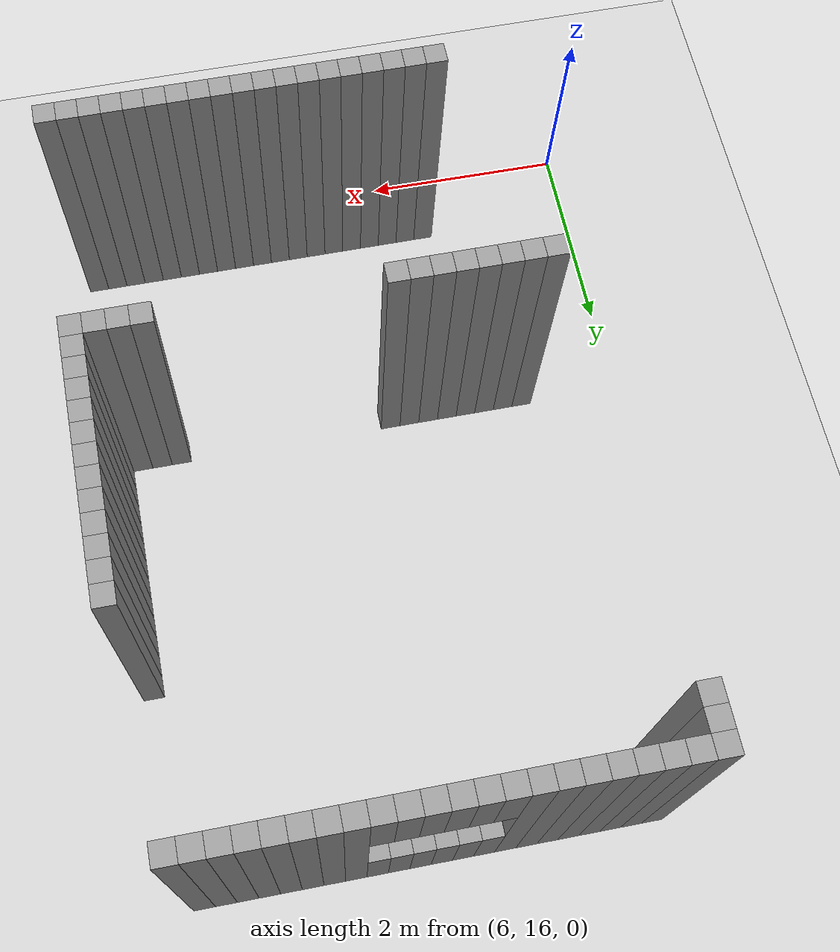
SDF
<sdf version="1.7">
 <world name="default">
  <model name="ground_plane">
   <static>1</static>
   <link name="link">
    <collision name="collision">
     <geometry><plane><normal>0 0 1</normal><size>100 100</size></plane></geometry>
     <surface>
      <contact><collide_bitmask>65535</collide_bitmask></contact>
      <friction><ode><mu>100</mu><mu2>50</mu2></ode></friction>
     </surface>
    </collision>
    <visual name="visual">
     <cast_shadows>0</cast_shadows>
     <geometry><plane><normal>0 0 1</normal><size>100 100</size></plane></geometry>
     <material>
      <script><uri>file://media/materials/scripts/gazebo.material</uri><name>Gazebo/Grey</name></script>
     </material>
    </visual>
   </link>
  </model>
  <model name="05222">
   <pose>-1 -1 0 0 -0 0</pose>
   <link name="Wall_824">
    <collision name="Wall_824_Collision">
     <geometry><box><size>0.2 0.2 3</size></box></geometry>
     <pose>0 0 1.5 0 -0 0</pose>
    </collision>
    <visual name="Wall_824_Visual">
     <pose>0 0 1.5 0 -0 0</pose>
     <geometry><box><size>0.2 0.2 3</size></box></geometry>
     <material>
      <script><uri>file://media/materials/scripts/gazebo.material</uri><name>Gazebo/Grey</name></script>
      <ambient>1 1 1 1</ambient>
     </material>
     <meta><layer>0</layer></meta>
    </visual>
    <pose>8.6 17.6 0 0 -0 0</pose>
   </link>
   <link name="Wall_825">
    <collision name="Wall_825_Collision">
     <geometry><box><size>0.2 0.2 3</size></box></geometry>
     <pose>0 0 1.5 0 -0 0</pose>
    </collision>
    <visual name="Wall_825_Visual">
     <pose>0 0 1.5 0 -0 0</pose>
     <geometry><box><size>0.2 0.2 3</size></box></geometry>
     <material>
      <script><uri>file://media/materials/scripts/gazebo.material</uri><name>Gazebo/Grey</name></script>
      <ambient>1 1 1 1</ambient>
     </material>
     <meta><layer>0</layer></meta>
    </visual>
    <pose>8.8 17.6 0 0 -0 0</pose>
   </link>
   <link name="Wall_826">
    <collision name="Wall_826_Collision">
     <geometry><box><size>0.2 0.2 3</size></box></geometry>
     <pose>0 0 1.5 0 -0 0</pose>
    </collision>
    <visual name="Wall_826_Visual">
     <pose>0 0 1.5 0 -0 0</pose>
     <geometry><box><size>0.2 0.2 3</size></box></geometry>
     <material>
      <script><uri>file://media/materials/scripts/gazebo.material</uri><name>Gazebo/Grey</name></script>
      <ambient>1 1 1 1</ambient>
     </material>
     <meta><layer>0</layer></meta>
    </visual>
    <pose>9.0 17.6 0 0 -0 0</pose>
   </link>
   <link name="Wall_827">
    <collision name="Wall_827_Collision">
     <geometry><box><size>0.2 0.2 3</size></box></geometry>
     <pose>0 0 1.5 0 -0 0</pose>
    </collision>
    <visual name="Wall_827_Visual">
     <pose>0 0 1.5 0 -0 0</pose>
     <geometry><box><size>0.2 0.2 3</size></box></geometry>
     <material>
      <script><uri>file://media/materials/scripts/gazebo.material</uri><name>Gazebo/Grey</name></script>
      <ambient>1 1 1 1</ambient>
     </material>
     <meta><layer>0</layer></meta>
    </visual>
    <pose>9.200000000000001 17.6 0 0 -0 0</pose>
   </link>
   <link name="Wall_828">
    <collision name="Wall_828_Collision">
     <geometry><box><size>0.2 0.2 3</size></box></geometry>
     <pose>0 0 1.5 0 -0 0</pose>
    </collision>
    <visual name="Wall_828_Visual">
     <pose>0 0 1.5 0 -0 0</pose>
     <geometry><box><size>0.2 0.2 3</size></box></geometry>
     <material>
      <script><uri>file://media/materials/scripts/gazebo.material</uri><name>Gazebo/Grey</name></script>
      <ambient>1 1 1 1</ambient>
     </material>
     <meta><layer>0</layer></meta>
    </visual>
    <pose>9.4 17.6 0 0 -0 0</pose>
   </link>
   <link name="Wall_829">
    <collision name="Wall_829_Collision">
     <geometry><box><size>0.2 0.2 3</size></box></geometry>
     <pose>0 0 1.5 0 -0 0</pose>
    </collision>
    <visual name="Wall_829_Visual">
     <pose>0 0 1.5 0 -0 0</pose>
     <geometry><box><size>0.2 0.2 3</size></box></geometry>
     <material>
      <script><uri>file://media/materials/scripts/gazebo.material</uri><name>Gazebo/Grey</name></script>
      <ambient>1 1 1 1</ambient>
     </material>
     <meta><layer>0</layer></meta>
    </visual>
    <pose>9.600000000000001 17.6 0 0 -0 0</pose>
   </link>
   <link name="Wall_830">
    <collision name="Wall_830_Collision">
     <geometry><box><size>0.2 0.2 3</size></box></geometry>
     <pose>0 0 1.5 0 -0 0</pose>
    </collision>
    <visual name="Wall_830_Visual">
     <pose>0 0 1.5 0 -0 0</pose>
     <geometry><box><size>0.2 0.2 3</size></box></geometry>
     <material>
      <script><uri>file://media/materials/scripts/gazebo.material</uri><name>Gazebo/Grey</name></script>
      <ambient>1 1 1 1</ambient>
     </material>
     <meta><layer>0</layer></meta>
    </visual>
    <pose>9.8 17.6 0 0 -0 0</pose>
   </link>
   <link name="Wall_831">
    <collision name="Wall_831_Collision">
     <geometry><box><size>0.2 0.2 3</size></box></geometry>
     <pose>0 0 1.5 0 -0 0</pose>
    </collision>
    <visual name="Wall_831_Visual">
     <pose>0 0 1.5 0 -0 0</pose>
     <geometry><box><size>0.2 0.2 3</size></box></geometry>
     <material>
      <script><uri>file://media/materials/scripts/gazebo.material</uri><name>Gazebo/Grey</name></script>
      <ambient>1 1 1 1</ambient>
     </material>
     <meta><layer>0</layer></meta>
    </visual>
    <pose>10.0 17.6 0 0 -0 0</pose>
   </link>
   <link name="Wall_832">
    <collision name="Wall_832_Collision">
     <geometry><box><size>0.2 0.2 3</size></box></geometry>
     <pose>0 0 1.5 0 -0 0</pose>
    </collision>
    <visual name="Wall_832_Visual">
     <pose>0 0 1.5 0 -0 0</pose>
     <geometry><box><size>0.2 0.2 3</size></box></geometry>
     <material>
      <script><uri>file://media/materials/scripts/gazebo.material</uri><name>Gazebo/Grey</name></script>
      <ambient>1 1 1 1</ambient>
     </material>
     <meta><layer>0</layer></meta>
    </visual>
    <pose>10.200000000000001 17.6 0 0 -0 0</pose>
   </link>
   <link name="Wall_833">
    <collision name="Wall_833_Collision">
     <geometry><box><size>0.2 0.2 3</size></box></geometry>
     <pose>0 0 1.5 0 -0 0</pose>
    </collision>
    <visual name="Wall_833_Visual">
     <pose>0 0 1.5 0 -0 0</pose>
     <geometry><box><size>0.2 0.2 3</size></box></geometry>
     <material>
      <script><uri>file://media/materials/scripts/gazebo.material</uri><name>Gazebo/Grey</name></script>
      <ambient>1 1 1 1</ambient>
     </material>
     <meta><layer>0</layer></meta>
    </visual>
    <pose>10.4 17.6 0 0 -0 0</pose>
   </link>
   <link name="Wall_834">
    <collision name="Wall_834_Collision">
     <geometry><box><size>0.2 0.2 3</size></box></geometry>
     <pose>0 0 1.5 0 -0 0</pose>
    </collision>
    <visual name="Wall_834_Visual">
     <pose>0 0 1.5 0 -0 0</pose>
     <geometry><box><size>0.2 0.2 3</size></box></geometry>
     <material>
      <script><uri>file://media/materials/scripts/gazebo.material</uri><name>Gazebo/Grey</name></script>
      <ambient>1 1 1 1</ambient>
     </material>
     <meta><layer>0</layer></meta>
    </visual>
    <pose>10.600000000000001 17.6 0 0 -0 0</pose>
   </link>
   <link name="Wall_835">
    <collision name="Wall_835_Collision">
     <geometry><box><size>0.2 0.2 3</size></box></geometry>
     <pose>0 0 1.5 0 -0 0</pose>
    </collision>
    <visual name="Wall_835_Visual">
     <pose>0 0 1.5 0 -0 0</pose>
     <geometry><box><size>0.2 0.2 3</size></box></geometry>
     <material>
      <script><uri>file://media/materials/scripts/gazebo.material</uri><name>Gazebo/Grey</name></script>
      <ambient>1 1 1 1</ambient>
     </material>
     <meta><layer>0</layer></meta>
    </visual>
    <pose>10.8 17.6 0 0 -0 0</pose>
   </link>
   <link name="Wall_836">
    <collision name="Wall_836_Collision">
     <geometry><box><size>0.2 0.2 3</size></box></geometry>
     <pose>0 0 1.5 0 -0 0</pose>
    </collision>
    <visual name="Wall_836_Visual">
     <pose>0 0 1.5 0 -0 0</pose>
     <geometry><box><size>0.2 0.2 3</size></box></geometry>
     <material>
      <script><uri>file://media/materials/scripts/gazebo.material</uri><name>Gazebo/Grey</name></script>
      <ambient>1 1 1 1</ambient>
     </material>
     <meta><layer>0</layer></meta>
    </visual>
    <pose>11.0 17.6 0 0 -0 0</pose>
   </link>
   <link name="Wall_837">
    <collision name="Wall_837_Collision">
     <geometry><box><size>0.2 0.2 3</size></box></geometry>
     <pose>0 0 1.5 0 -0 0</pose>
    </collision>
    <visual name="Wall_837_Visual">
     <pose>0 0 1.5 0 -0 0</pose>
     <geometry><box><size>0.2 0.2 3</size></box></geometry>
     <material>
      <script><uri>file://media/materials/scripts/gazebo.material</uri><name>Gazebo/Grey</name></script>
      <ambient>1 1 1 1</ambient>
     </material>
     <meta><layer>0</layer></meta>
    </visual>
    <pose>11.200000000000001 17.6 0 0 -0 0</pose>
   </link>
   <link name="Wall_838">
    <collision name="Wall_838_Collision">
     <geometry><box><size>0.2 0.2 3</size></box></geometry>
     <pose>0 0 1.5 0 -0 0</pose>
    </collision>
    <visual name="Wall_838_Visual">
     <pose>0 0 1.5 0 -0 0</pose>
     <geometry><box><size>0.2 0.2 3</size></box></geometry>
     <material>
      <script><uri>file://media/materials/scripts/gazebo.material</uri><name>Gazebo/Grey</name></script>
      <ambient>1 1 1 1</ambient>
     </material>
     <meta><layer>0</layer></meta>
    </visual>
    <pose>11.4 17.6 0 0 -0 0</pose>
   </link>
   <link name="Wall_839">
    <collision name="Wall_839_Collision">
     <geometry><box><size>0.2 0.2 3</size></box></geometry>
     <pose>0 0 1.5 0 -0 0</pose>
    </collision>
    <visual name="Wall_839_Visual">
     <pose>0 0 1.5 0 -0 0</pose>
     <geometry><box><size>0.2 0.2 3</size></box></geometry>
     <material>
      <script><uri>file://media/materials/scripts/gazebo.material</uri><name>Gazebo/Grey</name></script>
      <ambient>1 1 1 1</ambient>
     </material>
     <meta><layer>0</layer></meta>
    </visual>
    <pose>11.600000000000001 17.6 0 0 -0 0</pose>
   </link>
   <link name="Wall_840">
    <collision name="Wall_840_Collision">
     <geometry><box><size>0.2 0.2 3</size></box></geometry>
     <pose>0 0 1.5 0 -0 0</pose>
    </collision>
    <visual name="Wall_840_Visual">
     <pose>0 0 1.5 0 -0 0</pose>
     <geometry><box><size>0.2 0.2 3</size></box></geometry>
     <material>
      <script><uri>file://media/materials/scripts/gazebo.material</uri><name>Gazebo/Grey</name></script>
      <ambient>1 1 1 1</ambient>
     </material>
     <meta><layer>0</layer></meta>
    </visual>
    <pose>11.8 17.6 0 0 -0 0</pose>
   </link>
   <link name="Wall_841">
    <collision name="Wall_841_Collision">
     <geometry><box><size>0.2 0.2 3</size></box></geometry>
     <pose>0 0 1.5 0 -0 0</pose>
    </collision>
    <visual name="Wall_841_Visual">
     <pose>0 0 1.5 0 -0 0</pose>
     <geometry><box><size>0.2 0.2 3</size></box></geometry>
     <material>
      <script><uri>file://media/materials/scripts/gazebo.material</uri><name>Gazebo/Grey</name></script>
      <ambient>1 1 1 1</ambient>
     </material>
     <meta><layer>0</layer></meta>
    </visual>
    <pose>12.0 17.6 0 0 -0 0</pose>
   </link>
   <link name="Wall_842">
    <collision name="Wall_842_Collision">
     <geometry><box><size>0.2 0.2 3</size></box></geometry>
     <pose>0 0 1.5 0 -0 0</pose>
    </collision>
    <visual name="Wall_842_Visual">
     <pose>0 0 1.5 0 -0 0</pose>
     <geometry><box><size>0.2 0.2 3</size></box></geometry>
     <material>
      <script><uri>file://media/materials/scripts/gazebo.material</uri><name>Gazebo/Grey</name></script>
      <ambient>1 1 1 1</ambient>
     </material>
     <meta><layer>0</layer></meta>
    </visual>
    <pose>12.200000000000001 17.6 0 0 -0 0</pose>
   </link>
   <link name="Wall_912">
    <collision name="Wall_912_Collision">
     <geometry><box><size>0.2 0.2 3</size></box></geometry>
     <pose>0 0 1.5 0 -0 0</pose>
    </collision>
    <visual name="Wall_912_Visual">
     <pose>0 0 1.5 0 -0 0</pose>
     <geometry><box><size>0.2 0.2 3</size></box></geometry>
     <material>
      <script><uri>file://media/materials/scripts/gazebo.material</uri><name>Gazebo/Grey</name></script>
      <ambient>1 1 1 1</ambient>
     </material>
     <meta><layer>0</layer></meta>
    </visual>
    <pose>8.0 19.8 0 0 -0 0</pose>
   </link>
   <link name="Wall_913">
    <collision name="Wall_913_Collision">
     <geometry><box><size>0.2 0.2 3</size></box></geometry>
     <pose>0 0 1.5 0 -0 0</pose>
    </collision>
    <visual name="Wall_913_Visual">
     <pose>0 0 1.5 0 -0 0</pose>
     <geometry><box><size>0.2 0.2 3</size></box></geometry>
     <material>
      <script><uri>file://media/materials/scripts/gazebo.material</uri><name>Gazebo/Grey</name></script>
      <ambient>1 1 1 1</ambient>
     </material>
     <meta><layer>0</layer></meta>
    </visual>
    <pose>8.200000000000001 19.8 0 0 -0 0</pose>
   </link>
   <link name="Wall_914">
    <collision name="Wall_914_Collision">
     <geometry><box><size>0.2 0.2 3</size></box></geometry>
     <pose>0 0 1.5 0 -0 0</pose>
    </collision>
    <visual name="Wall_914_Visual">
     <pose>0 0 1.5 0 -0 0</pose>
     <geometry><box><size>0.2 0.2 3</size></box></geometry>
     <material>
      <script><uri>file://media/materials/scripts/gazebo.material</uri><name>Gazebo/Grey</name></script>
      <ambient>1 1 1 1</ambient>
     </material>
     <meta><layer>0</layer></meta>
    </visual>
    <pose>8.4 19.8 0 0 -0 0</pose>
   </link>
   <link name="Wall_915">
    <collision name="Wall_915_Collision">
     <geometry><box><size>0.2 0.2 3</size></box></geometry>
     <pose>0 0 1.5 0 -0 0</pose>
    </collision>
    <visual name="Wall_915_Visual">
     <pose>0 0 1.5 0 -0 0</pose>
     <geometry><box><size>0.2 0.2 3</size></box></geometry>
     <material>
      <script><uri>file://media/materials/scripts/gazebo.material</uri><name>Gazebo/Grey</name></script>
      <ambient>1 1 1 1</ambient>
     </material>
     <meta><layer>0</layer></meta>
    </visual>
    <pose>8.6 19.8 0 0 -0 0</pose>
   </link>
   <link name="Wall_916">
    <collision name="Wall_916_Collision">
     <geometry><box><size>0.2 0.2 3</size></box></geometry>
     <pose>0 0 1.5 0 -0 0</pose>
    </collision>
    <visual name="Wall_916_Visual">
     <pose>0 0 1.5 0 -0 0</pose>
     <geometry><box><size>0.2 0.2 3</size></box></geometry>
     <material>
      <script><uri>file://media/materials/scripts/gazebo.material</uri><name>Gazebo/Grey</name></script>
      <ambient>1 1 1 1</ambient>
     </material>
     <meta><layer>0</layer></meta>
    </visual>
    <pose>8.8 19.8 0 0 -0 0</pose>
   </link>
   <link name="Wall_917">
    <collision name="Wall_917_Collision">
     <geometry><box><size>0.2 0.2 3</size></box></geometry>
     <pose>0 0 1.5 0 -0 0</pose>
    </collision>
    <visual name="Wall_917_Visual">
     <pose>0 0 1.5 0 -0 0</pose>
     <geometry><box><size>0.2 0.2 3</size></box></geometry>
     <material>
      <script><uri>file://media/materials/scripts/gazebo.material</uri><name>Gazebo/Grey</name></script>
      <ambient>1 1 1 1</ambient>
     </material>
     <meta><layer>0</layer></meta>
    </visual>
    <pose>9.0 19.8 0 0 -0 0</pose>
   </link>
   <link name="Wall_918">
    <collision name="Wall_918_Collision">
     <geometry><box><size>0.2 0.2 3</size></box></geometry>
     <pose>0 0 1.5 0 -0 0</pose>
    </collision>
    <visual name="Wall_918_Visual">
     <pose>0 0 1.5 0 -0 0</pose>
     <geometry><box><size>0.2 0.2 3</size></box></geometry>
     <material>
      <script><uri>file://media/materials/scripts/gazebo.material</uri><name>Gazebo/Grey</name></script>
      <ambient>1 1 1 1</ambient>
     </material>
     <meta><layer>0</layer></meta>
    </visual>
    <pose>9.200000000000001 19.8 0 0 -0 0</pose>
   </link>
   <link name="Wall_919">
    <collision name="Wall_919_Collision">
     <geometry><box><size>0.2 0.2 3</size></box></geometry>
     <pose>0 0 1.5 0 -0 0</pose>
    </collision>
    <visual name="Wall_919_Visual">
     <pose>0 0 1.5 0 -0 0</pose>
     <geometry><box><size>0.2 0.2 3</size></box></geometry>
     <material>
      <script><uri>file://media/materials/scripts/gazebo.material</uri><name>Gazebo/Grey</name></script>
      <ambient>1 1 1 1</ambient>
     </material>
     <meta><layer>0</layer></meta>
    </visual>
    <pose>9.4 19.8 0 0 -0 0</pose>
   </link>
   <link name="Wall_920">
    <collision name="Wall_920_Collision">
     <geometry><box><size>0.2 0.2 3</size></box></geometry>
     <pose>0 0 1.5 0 -0 0</pose>
    </collision>
    <visual name="Wall_920_Visual">
     <pose>0 0 1.5 0 -0 0</pose>
     <geometry><box><size>0.2 0.2 3</size></box></geometry>
     <material>
      <script><uri>file://media/materials/scripts/gazebo.material</uri><name>Gazebo/Grey</name></script>
      <ambient>1 1 1 1</ambient>
     </material>
     <meta><layer>0</layer></meta>
    </visual>
    <pose>11.600000000000001 19.8 0 0 -0 0</pose>
   </link>
   <link name="Wall_921">
    <collision name="Wall_921_Collision">
     <geometry><box><size>0.2 0.2 3</size></box></geometry>
     <pose>0 0 1.5 0 -0 0</pose>
    </collision>
    <visual name="Wall_921_Visual">
     <pose>0 0 1.5 0 -0 0</pose>
     <geometry><box><size>0.2 0.2 3</size></box></geometry>
     <material>
      <script><uri>file://media/materials/scripts/gazebo.material</uri><name>Gazebo/Grey</name></script>
      <ambient>1 1 1 1</ambient>
     </material>
     <meta><layer>0</layer></meta>
    </visual>
    <pose>11.8 19.8 0 0 -0 0</pose>
   </link>
   <link name="Wall_922">
    <collision name="Wall_922_Collision">
     <geometry><box><size>0.2 0.2 3</size></box></geometry>
     <pose>0 0 1.5 0 -0 0</pose>
    </collision>
    <visual name="Wall_922_Visual">
     <pose>0 0 1.5 0 -0 0</pose>
     <geometry><box><size>0.2 0.2 3</size></box></geometry>
     <material>
      <script><uri>file://media/materials/scripts/gazebo.material</uri><name>Gazebo/Grey</name></script>
      <ambient>1 1 1 1</ambient>
     </material>
     <meta><layer>0</layer></meta>
    </visual>
    <pose>12.0 19.8 0 0 -0 0</pose>
   </link>
   <link name="Wall_923">
    <collision name="Wall_923_Collision">
     <geometry><box><size>0.2 0.2 3</size></box></geometry>
     <pose>0 0 1.5 0 -0 0</pose>
    </collision>
    <visual name="Wall_923_Visual">
     <pose>0 0 1.5 0 -0 0</pose>
     <geometry><box><size>0.2 0.2 3</size></box></geometry>
     <material>
      <script><uri>file://media/materials/scripts/gazebo.material</uri><name>Gazebo/Grey</name></script>
      <ambient>1 1 1 1</ambient>
     </material>
     <meta><layer>0</layer></meta>
    </visual>
    <pose>12.200000000000001 19.8 0 0 -0 0</pose>
   </link>
   <link name="Wall_948">
    <collision name="Wall_948_Collision">
     <geometry><box><size>0.2 0.2 3</size></box></geometry>
     <pose>0 0 1.5 0 -0 0</pose>
    </collision>
    <visual name="Wall_948_Visual">
     <pose>0 0 1.5 0 -0 0</pose>
     <geometry><box><size>0.2 0.2 3</size></box></geometry>
     <material>
      <script><uri>file://media/materials/scripts/gazebo.material</uri><name>Gazebo/Grey</name></script>
      <ambient>1 1 1 1</ambient>
     </material>
     <meta><layer>0</layer></meta>
    </visual>
    <pose>12.200000000000001 20.0 0 0 -0 0</pose>
   </link>
   <link name="Wall_953">
    <collision name="Wall_953_Collision">
     <geometry><box><size>0.2 0.2 3</size></box></geometry>
     <pose>0 0 1.5 0 -0 0</pose>
    </collision>
    <visual name="Wall_953_Visual">
     <pose>0 0 1.5 0 -0 0</pose>
     <geometry><box><size>0.2 0.2 3</size></box></geometry>
     <material>
      <script><uri>file://media/materials/scripts/gazebo.material</uri><name>Gazebo/Grey</name></script>
      <ambient>1 1 1 1</ambient>
     </material>
     <meta><layer>0</layer></meta>
    </visual>
    <pose>12.200000000000001 20.200000000000003 0 0 -0 0</pose>
   </link>
   <link name="Wall_959">
    <collision name="Wall_959_Collision">
     <geometry><box><size>0.2 0.2 3</size></box></geometry>
     <pose>0 0 1.5 0 -0 0</pose>
    </collision>
    <visual name="Wall_959_Visual">
     <pose>0 0 1.5 0 -0 0</pose>
     <geometry><box><size>0.2 0.2 3</size></box></geometry>
     <material>
      <script><uri>file://media/materials/scripts/gazebo.material</uri><name>Gazebo/Grey</name></script>
      <ambient>1 1 1 1</ambient>
     </material>
     <meta><layer>0</layer></meta>
    </visual>
    <pose>12.200000000000001 20.400000000000002 0 0 -0 0</pose>
   </link>
   <link name="Wall_965">
    <collision name="Wall_965_Collision">
     <geometry><box><size>0.2 0.2 3</size></box></geometry>
     <pose>0 0 1.5 0 -0 0</pose>
    </collision>
    <visual name="Wall_965_Visual">
     <pose>0 0 1.5 0 -0 0</pose>
     <geometry><box><size>0.2 0.2 3</size></box></geometry>
     <material>
      <script><uri>file://media/materials/scripts/gazebo.material</uri><name>Gazebo/Grey</name></script>
      <ambient>1 1 1 1</ambient>
     </material>
     <meta><layer>0</layer></meta>
    </visual>
    <pose>12.200000000000001 20.6 0 0 -0 0</pose>
   </link>
   <link name="Wall_971">
    <collision name="Wall_971_Collision">
     <geometry><box><size>0.2 0.2 3</size></box></geometry>
     <pose>0 0 1.5 0 -0 0</pose>
    </collision>
    <visual name="Wall_971_Visual">
     <pose>0 0 1.5 0 -0 0</pose>
     <geometry><box><size>0.2 0.2 3</size></box></geometry>
     <material>
      <script><uri>file://media/materials/scripts/gazebo.material</uri><name>Gazebo/Grey</name></script>
      <ambient>1 1 1 1</ambient>
     </material>
     <meta><layer>0</layer></meta>
    </visual>
    <pose>12.200000000000001 20.8 0 0 -0 0</pose>
   </link>
   <link name="Wall_977">
    <collision name="Wall_977_Collision">
     <geometry><box><size>0.2 0.2 3</size></box></geometry>
     <pose>0 0 1.5 0 -0 0</pose>
    </collision>
    <visual name="Wall_977_Visual">
     <pose>0 0 1.5 0 -0 0</pose>
     <geometry><box><size>0.2 0.2 3</size></box></geometry>
     <material>
      <script><uri>file://media/materials/scripts/gazebo.material</uri><name>Gazebo/Grey</name></script>
      <ambient>1 1 1 1</ambient>
     </material>
     <meta><layer>0</layer></meta>
    </visual>
    <pose>12.200000000000001 21.0 0 0 -0 0</pose>
   </link>
   <link name="Wall_983">
    <collision name="Wall_983_Collision">
     <geometry><box><size>0.2 0.2 3</size></box></geometry>
     <pose>0 0 1.5 0 -0 0</pose>
    </collision>
    <visual name="Wall_983_Visual">
     <pose>0 0 1.5 0 -0 0</pose>
     <geometry><box><size>0.2 0.2 3</size></box></geometry>
     <material>
      <script><uri>file://media/materials/scripts/gazebo.material</uri><name>Gazebo/Grey</name></script>
      <ambient>1 1 1 1</ambient>
     </material>
     <meta><layer>0</layer></meta>
    </visual>
    <pose>12.200000000000001 21.200000000000003 0 0 -0 0</pose>
   </link>
   <link name="Wall_990">
    <collision name="Wall_990_Collision">
     <geometry><box><size>0.2 0.2 3</size></box></geometry>
     <pose>0 0 1.5 0 -0 0</pose>
    </collision>
    <visual name="Wall_990_Visual">
     <pose>0 0 1.5 0 -0 0</pose>
     <geometry><box><size>0.2 0.2 3</size></box></geometry>
     <material>
      <script><uri>file://media/materials/scripts/gazebo.material</uri><name>Gazebo/Grey</name></script>
      <ambient>1 1 1 1</ambient>
     </material>
     <meta><layer>0</layer></meta>
    </visual>
    <pose>12.200000000000001 21.400000000000002 0 0 -0 0</pose>
   </link>
   <link name="Wall_997">
    <collision name="Wall_997_Collision">
     <geometry><box><size>0.2 0.2 3</size></box></geometry>
     <pose>0 0 1.5 0 -0 0</pose>
    </collision>
    <visual name="Wall_997_Visual">
     <pose>0 0 1.5 0 -0 0</pose>
     <geometry><box><size>0.2 0.2 3</size></box></geometry>
     <material>
      <script><uri>file://media/materials/scripts/gazebo.material</uri><name>Gazebo/Grey</name></script>
      <ambient>1 1 1 1</ambient>
     </material>
     <meta><layer>0</layer></meta>
    </visual>
    <pose>12.200000000000001 21.6 0 0 -0 0</pose>
   </link>
   <link name="Wall_1003">
    <collision name="Wall_1003_Collision">
     <geometry><box><size>0.2 0.2 3</size></box></geometry>
     <pose>0 0 1.5 0 -0 0</pose>
    </collision>
    <visual name="Wall_1003_Visual">
     <pose>0 0 1.5 0 -0 0</pose>
     <geometry><box><size>0.2 0.2 3</size></box></geometry>
     <material>
      <script><uri>file://media/materials/scripts/gazebo.material</uri><name>Gazebo/Grey</name></script>
      <ambient>1 1 1 1</ambient>
     </material>
     <meta><layer>0</layer></meta>
    </visual>
    <pose>12.200000000000001 21.8 0 0 -0 0</pose>
   </link>
   <link name="Wall_1009">
    <collision name="Wall_1009_Collision">
     <geometry><box><size>0.2 0.2 3</size></box></geometry>
     <pose>0 0 1.5 0 -0 0</pose>
    </collision>
    <visual name="Wall_1009_Visual">
     <pose>0 0 1.5 0 -0 0</pose>
     <geometry><box><size>0.2 0.2 3</size></box></geometry>
     <material>
      <script><uri>file://media/materials/scripts/gazebo.material</uri><name>Gazebo/Grey</name></script>
      <ambient>1 1 1 1</ambient>
     </material>
     <meta><layer>0</layer></meta>
    </visual>
    <pose>12.200000000000001 22.0 0 0 -0 0</pose>
   </link>
   <link name="Wall_1015">
    <collision name="Wall_1015_Collision">
     <geometry><box><size>0.2 0.2 3</size></box></geometry>
     <pose>0 0 1.5 0 -0 0</pose>
    </collision>
    <visual name="Wall_1015_Visual">
     <pose>0 0 1.5 0 -0 0</pose>
     <geometry><box><size>0.2 0.2 3</size></box></geometry>
     <material>
      <script><uri>file://media/materials/scripts/gazebo.material</uri><name>Gazebo/Grey</name></script>
      <ambient>1 1 1 1</ambient>
     </material>
     <meta><layer>0</layer></meta>
    </visual>
    <pose>12.200000000000001 22.200000000000003 0 0 -0 0</pose>
   </link>
   <link name="Wall_1059">
    <collision name="Wall_1059_Collision">
     <geometry><box><size>0.2 0.2 3</size></box></geometry>
     <pose>0 0 1.5 0 -0 0</pose>
    </collision>
    <visual name="Wall_1059_Visual">
     <pose>0 0 1.5 0 -0 0</pose>
     <geometry><box><size>0.2 0.2 3</size></box></geometry>
     <material>
      <script><uri>file://media/materials/scripts/gazebo.material</uri><name>Gazebo/Grey</name></script>
      <ambient>1 1 1 1</ambient>
     </material>
     <meta><layer>0</layer></meta>
    </visual>
    <pose>7.800000000000001 23.8 0 0 -0 0</pose>
   </link>
   <link name="Wall_1064">
    <collision name="Wall_1064_Collision">
     <geometry><box><size>0.2 0.2 3</size></box></geometry>
     <pose>0 0 1.5 0 -0 0</pose>
    </collision>
    <visual name="Wall_1064_Visual">
     <pose>0 0 1.5 0 -0 0</pose>
     <geometry><box><size>0.2 0.2 3</size></box></geometry>
     <material>
      <script><uri>file://media/materials/scripts/gazebo.material</uri><name>Gazebo/Grey</name></script>
      <ambient>1 1 1 1</ambient>
     </material>
     <meta><layer>0</layer></meta>
    </visual>
    <pose>7.800000000000001 24.0 0 0 -0 0</pose>
   </link>
   <link name="Wall_1125">
    <collision name="Wall_1125_Collision">
     <geometry><box><size>0.2 0.2 3</size></box></geometry>
     <pose>0 0 1.5 0 -0 0</pose>
    </collision>
    <visual name="Wall_1125_Visual">
     <pose>0 0 1.5 0 -0 0</pose>
     <geometry><box><size>0.2 0.2 3</size></box></geometry>
     <material>
      <script><uri>file://media/materials/scripts/gazebo.material</uri><name>Gazebo/Grey</name></script>
      <ambient>1 1 1 1</ambient>
     </material>
     <meta><layer>0</layer></meta>
    </visual>
    <pose>7.800000000000001 24.200000000000003 0 0 -0 0</pose>
   </link>
   <link name="Wall_1126">
    <collision name="Wall_1126_Collision">
     <geometry><box><size>0.2 0.2 3</size></box></geometry>
     <pose>0 0 1.5 0 -0 0</pose>
    </collision>
    <visual name="Wall_1126_Visual">
     <pose>0 0 1.5 0 -0 0</pose>
     <geometry><box><size>0.2 0.2 3</size></box></geometry>
     <material>
      <script><uri>file://media/materials/scripts/gazebo.material</uri><name>Gazebo/Grey</name></script>
      <ambient>1 1 1 1</ambient>
     </material>
     <meta><layer>0</layer></meta>
    </visual>
    <pose>8.0 24.200000000000003 0 0 -0 0</pose>
   </link>
   <link name="Wall_1127">
    <collision name="Wall_1127_Collision">
     <geometry><box><size>0.2 0.2 3</size></box></geometry>
     <pose>0 0 1.5 0 -0 0</pose>
    </collision>
    <visual name="Wall_1127_Visual">
     <pose>0 0 1.5 0 -0 0</pose>
     <geometry><box><size>0.2 0.2 3</size></box></geometry>
     <material>
      <script><uri>file://media/materials/scripts/gazebo.material</uri><name>Gazebo/Grey</name></script>
      <ambient>1 1 1 1</ambient>
     </material>
     <meta><layer>0</layer></meta>
    </visual>
    <pose>8.200000000000001 24.200000000000003 0 0 -0 0</pose>
   </link>
   <link name="Wall_1128">
    <collision name="Wall_1128_Collision">
     <geometry><box><size>0.2 0.2 3</size></box></geometry>
     <pose>0 0 1.5 0 -0 0</pose>
    </collision>
    <visual name="Wall_1128_Visual">
     <pose>0 0 1.5 0 -0 0</pose>
     <geometry><box><size>0.2 0.2 3</size></box></geometry>
     <material>
      <script><uri>file://media/materials/scripts/gazebo.material</uri><name>Gazebo/Grey</name></script>
      <ambient>1 1 1 1</ambient>
     </material>
     <meta><layer>0</layer></meta>
    </visual>
    <pose>8.4 24.200000000000003 0 0 -0 0</pose>
   </link>
   <link name="Wall_1129">
    <collision name="Wall_1129_Collision">
     <geometry><box><size>0.2 0.2 3</size></box></geometry>
     <pose>0 0 1.5 0 -0 0</pose>
    </collision>
    <visual name="Wall_1129_Visual">
     <pose>0 0 1.5 0 -0 0</pose>
     <geometry><box><size>0.2 0.2 3</size></box></geometry>
     <material>
      <script><uri>file://media/materials/scripts/gazebo.material</uri><name>Gazebo/Grey</name></script>
      <ambient>1 1 1 1</ambient>
     </material>
     <meta><layer>0</layer></meta>
    </visual>
    <pose>8.6 24.200000000000003 0 0 -0 0</pose>
   </link>
   <link name="Wall_1130">
    <collision name="Wall_1130_Collision">
     <geometry><box><size>0.2 0.2 3</size></box></geometry>
     <pose>0 0 1.5 0 -0 0</pose>
    </collision>
    <visual name="Wall_1130_Visual">
     <pose>0 0 1.5 0 -0 0</pose>
     <geometry><box><size>0.2 0.2 3</size></box></geometry>
     <material>
      <script><uri>file://media/materials/scripts/gazebo.material</uri><name>Gazebo/Grey</name></script>
      <ambient>1 1 1 1</ambient>
     </material>
     <meta><layer>0</layer></meta>
    </visual>
    <pose>8.8 24.200000000000003 0 0 -0 0</pose>
   </link>
   <link name="Wall_1131">
    <collision name="Wall_1131_Collision">
     <geometry><box><size>0.2 0.2 3</size></box></geometry>
     <pose>0 0 1.5 0 -0 0</pose>
    </collision>
    <visual name="Wall_1131_Visual">
     <pose>0 0 1.5 0 -0 0</pose>
     <geometry><box><size>0.2 0.2 3</size></box></geometry>
     <material>
      <script><uri>file://media/materials/scripts/gazebo.material</uri><name>Gazebo/Grey</name></script>
      <ambient>1 1 1 1</ambient>
     </material>
     <meta><layer>0</layer></meta>
    </visual>
    <pose>9.0 24.200000000000003 0 0 -0 0</pose>
   </link>
   <link name="Wall_1132">
    <collision name="Wall_1132_Collision">
     <geometry><box><size>0.2 0.2 3</size></box></geometry>
     <pose>0 0 1.5 0 -0 0</pose>
    </collision>
    <visual name="Wall_1132_Visual">
     <pose>0 0 1.5 0 -0 0</pose>
     <geometry><box><size>0.2 0.2 3</size></box></geometry>
     <material>
      <script><uri>file://media/materials/scripts/gazebo.material</uri><name>Gazebo/Grey</name></script>
      <ambient>1 1 1 1</ambient>
     </material>
     <meta><layer>0</layer></meta>
    </visual>
    <pose>9.200000000000001 24.200000000000003 0 0 -0 0</pose>
   </link>
   <link name="Wall_1133">
    <collision name="Wall_1133_Collision">
     <geometry><box><size>0.2 0.2 1.0</size></box></geometry>
     <pose>0 0 0.5 0 -0 0</pose>
    </collision>
    <visual name="Wall_1133_Visual">
     <pose>0 0 0.5 0 -0 0</pose>
     <geometry><box><size>0.2 0.2 1.0</size></box></geometry>
     <material>
      <script><uri>file://media/materials/scripts/gazebo.material</uri><name>Gazebo/Grey</name></script>
      <ambient>1 1 1 1</ambient>
     </material>
     <meta><layer>0</layer></meta>
    </visual>
    <pose>9.4 24.200000000000003 0 0 -0 0</pose>
   </link>
   <link name="Wall_1134">
    <collision name="Wall_1134_Collision">
     <geometry><box><size>0.2 0.2 1.0</size></box></geometry>
     <pose>0 0 2.5 0 -0 0</pose>
    </collision>
    <visual name="Wall_1134_Visual">
     <pose>0 0 2.5 0 -0 0</pose>
     <geometry><box><size>0.2 0.2 1.0</size></box></geometry>
     <material>
      <script><uri>file://media/materials/scripts/gazebo.material</uri><name>Gazebo/Grey</name></script>
      <ambient>1 1 1 1</ambient>
     </material>
     <meta><layer>0</layer></meta>
    </visual>
    <pose>9.4 24.200000000000003 0 0 -0 0</pose>
   </link>
   <link name="Window_1133">
    <collision name="Window_1133_Collision">
     <geometry><box><size>0.2 0.2 1.0</size></box></geometry>
     <pose>0 0 1.5 0 -0 0</pose>
    </collision>
    <visual name="Wall_1134_Visual">
     <pose>0 0 2.5 0 -0 0</pose>
     <geometry><box><size>0.2 0.2 1.0</size></box></geometry>
     <material>
      <script><uri>file://media/materials/scripts/gazebo.material</uri><name>Gazebo/Grey</name></script>
      <ambient>1 1 1 1</ambient>
     </material>
     <meta><layer>0</layer></meta>
    </visual>
    <pose>9.4 24.200000000000003 0 0 -0 0</pose>
   </link>
   <link name="Wall_1135">
    <collision name="Wall_1135_Collision">
     <geometry><box><size>0.2 0.2 1.0</size></box></geometry>
     <pose>0 0 0.5 0 -0 0</pose>
    </collision>
    <visual name="Wall_1135_Visual">
     <pose>0 0 0.5 0 -0 0</pose>
     <geometry><box><size>0.2 0.2 1.0</size></box></geometry>
     <material>
      <script><uri>file://media/materials/scripts/gazebo.material</uri><name>Gazebo/Grey</name></script>
      <ambient>1 1 1 1</ambient>
     </material>
     <meta><layer>0</layer></meta>
    </visual>
    <pose>9.600000000000001 24.200000000000003 0 0 -0 0</pose>
   </link>
   <link name="Wall_1136">
    <collision name="Wall_1136_Collision">
     <geometry><box><size>0.2 0.2 1.0</size></box></geometry>
     <pose>0 0 2.5 0 -0 0</pose>
    </collision>
    <visual name="Wall_1136_Visual">
     <pose>0 0 2.5 0 -0 0</pose>
     <geometry><box><size>0.2 0.2 1.0</size></box></geometry>
     <material>
      <script><uri>file://media/materials/scripts/gazebo.material</uri><name>Gazebo/Grey</name></script>
      <ambient>1 1 1 1</ambient>
     </material>
     <meta><layer>0</layer></meta>
    </visual>
    <pose>9.600000000000001 24.200000000000003 0 0 -0 0</pose>
   </link>
   <link name="Window_1135">
    <collision name="Window_1135_Collision">
     <geometry><box><size>0.2 0.2 1.0</size></box></geometry>
     <pose>0 0 1.5 0 -0 0</pose>
    </collision>
    <visual name="Wall_1136_Visual">
     <pose>0 0 2.5 0 -0 0</pose>
     <geometry><box><size>0.2 0.2 1.0</size></box></geometry>
     <material>
      <script><uri>file://media/materials/scripts/gazebo.material</uri><name>Gazebo/Grey</name></script>
      <ambient>1 1 1 1</ambient>
     </material>
     <meta><layer>0</layer></meta>
    </visual>
    <pose>9.600000000000001 24.200000000000003 0 0 -0 0</pose>
   </link>
   <link name="Wall_1137">
    <collision name="Wall_1137_Collision">
     <geometry><box><size>0.2 0.2 1.0</size></box></geometry>
     <pose>0 0 0.5 0 -0 0</pose>
    </collision>
    <visual name="Wall_1137_Visual">
     <pose>0 0 0.5 0 -0 0</pose>
     <geometry><box><size>0.2 0.2 1.0</size></box></geometry>
     <material>
      <script><uri>file://media/materials/scripts/gazebo.material</uri><name>Gazebo/Grey</name></script>
      <ambient>1 1 1 1</ambient>
     </material>
     <meta><layer>0</layer></meta>
    </visual>
    <pose>9.8 24.200000000000003 0 0 -0 0</pose>
   </link>
   <link name="Wall_1138">
    <collision name="Wall_1138_Collision">
     <geometry><box><size>0.2 0.2 1.0</size></box></geometry>
     <pose>0 0 2.5 0 -0 0</pose>
    </collision>
    <visual name="Wall_1138_Visual">
     <pose>0 0 2.5 0 -0 0</pose>
     <geometry><box><size>0.2 0.2 1.0</size></box></geometry>
     <material>
      <script><uri>file://media/materials/scripts/gazebo.material</uri><name>Gazebo/Grey</name></script>
      <ambient>1 1 1 1</ambient>
     </material>
     <meta><layer>0</layer></meta>
    </visual>
    <pose>9.8 24.200000000000003 0 0 -0 0</pose>
   </link>
   <link name="Window_1137">
    <collision name="Window_1137_Collision">
     <geometry><box><size>0.2 0.2 1.0</size></box></geometry>
     <pose>0 0 1.5 0 -0 0</pose>
    </collision>
    <visual name="Wall_1138_Visual">
     <pose>0 0 2.5 0 -0 0</pose>
     <geometry><box><size>0.2 0.2 1.0</size></box></geometry>
     <material>
      <script><uri>file://media/materials/scripts/gazebo.material</uri><name>Gazebo/Grey</name></script>
      <ambient>1 1 1 1</ambient>
     </material>
     <meta><layer>0</layer></meta>
    </visual>
    <pose>9.8 24.200000000000003 0 0 -0 0</pose>
   </link>
   <link name="Wall_1139">
    <collision name="Wall_1139_Collision">
     <geometry><box><size>0.2 0.2 1.0</size></box></geometry>
     <pose>0 0 0.5 0 -0 0</pose>
    </collision>
    <visual name="Wall_1139_Visual">
     <pose>0 0 0.5 0 -0 0</pose>
     <geometry><box><size>0.2 0.2 1.0</size></box></geometry>
     <material>
      <script><uri>file://media/materials/scripts/gazebo.material</uri><name>Gazebo/Grey</name></script>
      <ambient>1 1 1 1</ambient>
     </material>
     <meta><layer>0</layer></meta>
    </visual>
    <pose>10.0 24.200000000000003 0 0 -0 0</pose>
   </link>
   <link name="Wall_1140">
    <collision name="Wall_1140_Collision">
     <geometry><box><size>0.2 0.2 1.0</size></box></geometry>
     <pose>0 0 2.5 0 -0 0</pose>
    </collision>
    <visual name="Wall_1140_Visual">
     <pose>0 0 2.5 0 -0 0</pose>
     <geometry><box><size>0.2 0.2 1.0</size></box></geometry>
     <material>
      <script><uri>file://media/materials/scripts/gazebo.material</uri><name>Gazebo/Grey</name></script>
      <ambient>1 1 1 1</ambient>
     </material>
     <meta><layer>0</layer></meta>
    </visual>
    <pose>10.0 24.200000000000003 0 0 -0 0</pose>
   </link>
   <link name="Window_1139">
    <collision name="Window_1139_Collision">
     <geometry><box><size>0.2 0.2 1.0</size></box></geometry>
     <pose>0 0 1.5 0 -0 0</pose>
    </collision>
    <visual name="Wall_1140_Visual">
     <pose>0 0 2.5 0 -0 0</pose>
     <geometry><box><size>0.2 0.2 1.0</size></box></geometry>
     <material>
      <script><uri>file://media/materials/scripts/gazebo.material</uri><name>Gazebo/Grey</name></script>
      <ambient>1 1 1 1</ambient>
     </material>
     <meta><layer>0</layer></meta>
    </visual>
    <pose>10.0 24.200000000000003 0 0 -0 0</pose>
   </link>
   <link name="Wall_1141">
    <collision name="Wall_1141_Collision">
     <geometry><box><size>0.2 0.2 1.0</size></box></geometry>
     <pose>0 0 0.5 0 -0 0</pose>
    </collision>
    <visual name="Wall_1141_Visual">
     <pose>0 0 0.5 0 -0 0</pose>
     <geometry><box><size>0.2 0.2 1.0</size></box></geometry>
     <material>
      <script><uri>file://media/materials/scripts/gazebo.material</uri><name>Gazebo/Grey</name></script>
      <ambient>1 1 1 1</ambient>
     </material>
     <meta><layer>0</layer></meta>
    </visual>
    <pose>10.200000000000001 24.200000000000003 0 0 -0 0</pose>
   </link>
   <link name="Wall_1142">
    <collision name="Wall_1142_Collision">
     <geometry><box><size>0.2 0.2 1.0</size></box></geometry>
     <pose>0 0 2.5 0 -0 0</pose>
    </collision>
    <visual name="Wall_1142_Visual">
     <pose>0 0 2.5 0 -0 0</pose>
     <geometry><box><size>0.2 0.2 1.0</size></box></geometry>
     <material>
      <script><uri>file://media/materials/scripts/gazebo.material</uri><name>Gazebo/Grey</name></script>
      <ambient>1 1 1 1</ambient>
     </material>
     <meta><layer>0</layer></meta>
    </visual>
    <pose>10.200000000000001 24.200000000000003 0 0 -0 0</pose>
   </link>
   <link name="Window_1141">
    <collision name="Window_1141_Collision">
     <geometry><box><size>0.2 0.2 1.0</size></box></geometry>
     <pose>0 0 1.5 0 -0 0</pose>
    </collision>
    <visual name="Wall_1142_Visual">
     <pose>0 0 2.5 0 -0 0</pose>
     <geometry><box><size>0.2 0.2 1.0</size></box></geometry>
     <material>
      <script><uri>file://media/materials/scripts/gazebo.material</uri><name>Gazebo/Grey</name></script>
      <ambient>1 1 1 1</ambient>
     </material>
     <meta><layer>0</layer></meta>
    </visual>
    <pose>10.200000000000001 24.200000000000003 0 0 -0 0</pose>
   </link>
   <link name="Wall_1143">
    <collision name="Wall_1143_Collision">
     <geometry><box><size>0.2 0.2 1.0</size></box></geometry>
     <pose>0 0 0.5 0 -0 0</pose>
    </collision>
    <visual name="Wall_1143_Visual">
     <pose>0 0 0.5 0 -0 0</pose>
     <geometry><box><size>0.2 0.2 1.0</size></box></geometry>
     <material>
      <script><uri>file://media/materials/scripts/gazebo.material</uri><name>Gazebo/Grey</name></script>
      <ambient>1 1 1 1</ambient>
     </material>
     <meta><layer>0</layer></meta>
    </visual>
    <pose>10.4 24.200000000000003 0 0 -0 0</pose>
   </link>
   <link name="Wall_1144">
    <collision name="Wall_1144_Collision">
     <geometry><box><size>0.2 0.2 1.0</size></box></geometry>
     <pose>0 0 2.5 0 -0 0</pose>
    </collision>
    <visual name="Wall_1144_Visual">
     <pose>0 0 2.5 0 -0 0</pose>
     <geometry><box><size>0.2 0.2 1.0</size></box></geometry>
     <material>
      <script><uri>file://media/materials/scripts/gazebo.material</uri><name>Gazebo/Grey</name></script>
      <ambient>1 1 1 1</ambient>
     </material>
     <meta><layer>0</layer></meta>
    </visual>
    <pose>10.4 24.200000000000003 0 0 -0 0</pose>
   </link>
   <link name="Window_1143">
    <collision name="Window_1143_Collision">
     <geometry><box><size>0.2 0.2 1.0</size></box></geometry>
     <pose>0 0 1.5 0 -0 0</pose>
    </collision>
    <visual name="Wall_1144_Visual">
     <pose>0 0 2.5 0 -0 0</pose>
     <geometry><box><size>0.2 0.2 1.0</size></box></geometry>
     <material>
      <script><uri>file://media/materials/scripts/gazebo.material</uri><name>Gazebo/Grey</name></script>
      <ambient>1 1 1 1</ambient>
     </material>
     <meta><layer>0</layer></meta>
    </visual>
    <pose>10.4 24.200000000000003 0 0 -0 0</pose>
   </link>
   <link name="Wall_1145">
    <collision name="Wall_1145_Collision">
     <geometry><box><size>0.2 0.2 3</size></box></geometry>
     <pose>0 0 1.5 0 -0 0</pose>
    </collision>
    <visual name="Wall_1145_Visual">
     <pose>0 0 1.5 0 -0 0</pose>
     <geometry><box><size>0.2 0.2 3</size></box></geometry>
     <material>
      <script><uri>file://media/materials/scripts/gazebo.material</uri><name>Gazebo/Grey</name></script>
      <ambient>1 1 1 1</ambient>
     </material>
     <meta><layer>0</layer></meta>
    </visual>
    <pose>10.600000000000001 24.200000000000003 0 0 -0 0</pose>
   </link>
   <link name="Wall_1146">
    <collision name="Wall_1146_Collision">
     <geometry><box><size>0.2 0.2 3</size></box></geometry>
     <pose>0 0 1.5 0 -0 0</pose>
    </collision>
    <visual name="Wall_1146_Visual">
     <pose>0 0 1.5 0 -0 0</pose>
     <geometry><box><size>0.2 0.2 3</size></box></geometry>
     <material>
      <script><uri>file://media/materials/scripts/gazebo.material</uri><name>Gazebo/Grey</name></script>
      <ambient>1 1 1 1</ambient>
     </material>
     <meta><layer>0</layer></meta>
    </visual>
    <pose>10.8 24.200000000000003 0 0 -0 0</pose>
   </link>
   <link name="Wall_1147">
    <collision name="Wall_1147_Collision">
     <geometry><box><size>0.2 0.2 3</size></box></geometry>
     <pose>0 0 1.5 0 -0 0</pose>
    </collision>
    <visual name="Wall_1147_Visual">
     <pose>0 0 1.5 0 -0 0</pose>
     <geometry><box><size>0.2 0.2 3</size></box></geometry>
     <material>
      <script><uri>file://media/materials/scripts/gazebo.material</uri><name>Gazebo/Grey</name></script>
      <ambient>1 1 1 1</ambient>
     </material>
     <meta><layer>0</layer></meta>
    </visual>
    <pose>11.0 24.200000000000003 0 0 -0 0</pose>
   </link>
   <link name="Wall_1148">
    <collision name="Wall_1148_Collision">
     <geometry><box><size>0.2 0.2 3</size></box></geometry>
     <pose>0 0 1.5 0 -0 0</pose>
    </collision>
    <visual name="Wall_1148_Visual">
     <pose>0 0 1.5 0 -0 0</pose>
     <geometry><box><size>0.2 0.2 3</size></box></geometry>
     <material>
      <script><uri>file://media/materials/scripts/gazebo.material</uri><name>Gazebo/Grey</name></script>
      <ambient>1 1 1 1</ambient>
     </material>
     <meta><layer>0</layer></meta>
    </visual>
    <pose>11.200000000000001 24.200000000000003 0 0 -0 0</pose>
   </link>
   <link name="Wall_1149">
    <collision name="Wall_1149_Collision">
     <geometry><box><size>0.2 0.2 3</size></box></geometry>
     <pose>0 0 1.5 0 -0 0</pose>
    </collision>
    <visual name="Wall_1149_Visual">
     <pose>0 0 1.5 0 -0 0</pose>
     <geometry><box><size>0.2 0.2 3</size></box></geometry>
     <material>
      <script><uri>file://media/materials/scripts/gazebo.material</uri><name>Gazebo/Grey</name></script>
      <ambient>1 1 1 1</ambient>
     </material>
     <meta><layer>0</layer></meta>
    </visual>
    <pose>11.4 24.200000000000003 0 0 -0 0</pose>
   </link>
   <link name="Wall_1150">
    <collision name="Wall_1150_Collision">
     <geometry><box><size>0.2 0.2 3</size></box></geometry>
     <pose>0 0 1.5 0 -0 0</pose>
    </collision>
    <visual name="Wall_1150_Visual">
     <pose>0 0 1.5 0 -0 0</pose>
     <geometry><box><size>0.2 0.2 3</size></box></geometry>
     <material>
      <script><uri>file://media/materials/scripts/gazebo.material</uri><name>Gazebo/Grey</name></script>
      <ambient>1 1 1 1</ambient>
     </material>
     <meta><layer>0</layer></meta>
    </visual>
    <pose>11.600000000000001 24.200000000000003 0 0 -0 0</pose>
   </link>
   <link name="Wall_1151">
    <collision name="Wall_1151_Collision">
     <geometry><box><size>0.2 0.2 3</size></box></geometry>
     <pose>0 0 1.5 0 -0 0</pose>
    </collision>
    <visual name="Wall_1151_Visual">
     <pose>0 0 1.5 0 -0 0</pose>
     <geometry><box><size>0.2 0.2 3</size></box></geometry>
     <material>
      <script><uri>file://media/materials/scripts/gazebo.material</uri><name>Gazebo/Grey</name></script>
      <ambient>1 1 1 1</ambient>
     </material>
     <meta><layer>0</layer></meta>
    </visual>
    <pose>11.8 24.200000000000003 0 0 -0 0</pose>
   </link>
   <link name="Wall_1152">
    <collision name="Wall_1152_Collision">
     <geometry><box><size>0.2 0.2 3</size></box></geometry>
     <pose>0 0 1.5 0 -0 0</pose>
    </collision>
    <visual name="Wall_1152_Visual">
     <pose>0 0 1.5 0 -0 0</pose>
     <geometry><box><size>0.2 0.2 3</size></box></geometry>
     <material>
      <script><uri>file://media/materials/scripts/gazebo.material</uri><name>Gazebo/Grey</name></script>
      <ambient>1 1 1 1</ambient>
     </material>
     <meta><layer>0</layer></meta>
    </visual>
    <pose>12.0 24.200000000000003 0 0 -0 0</pose>
   </link>
   <static>1</static>
  </model>
 </world>
</sdf>
